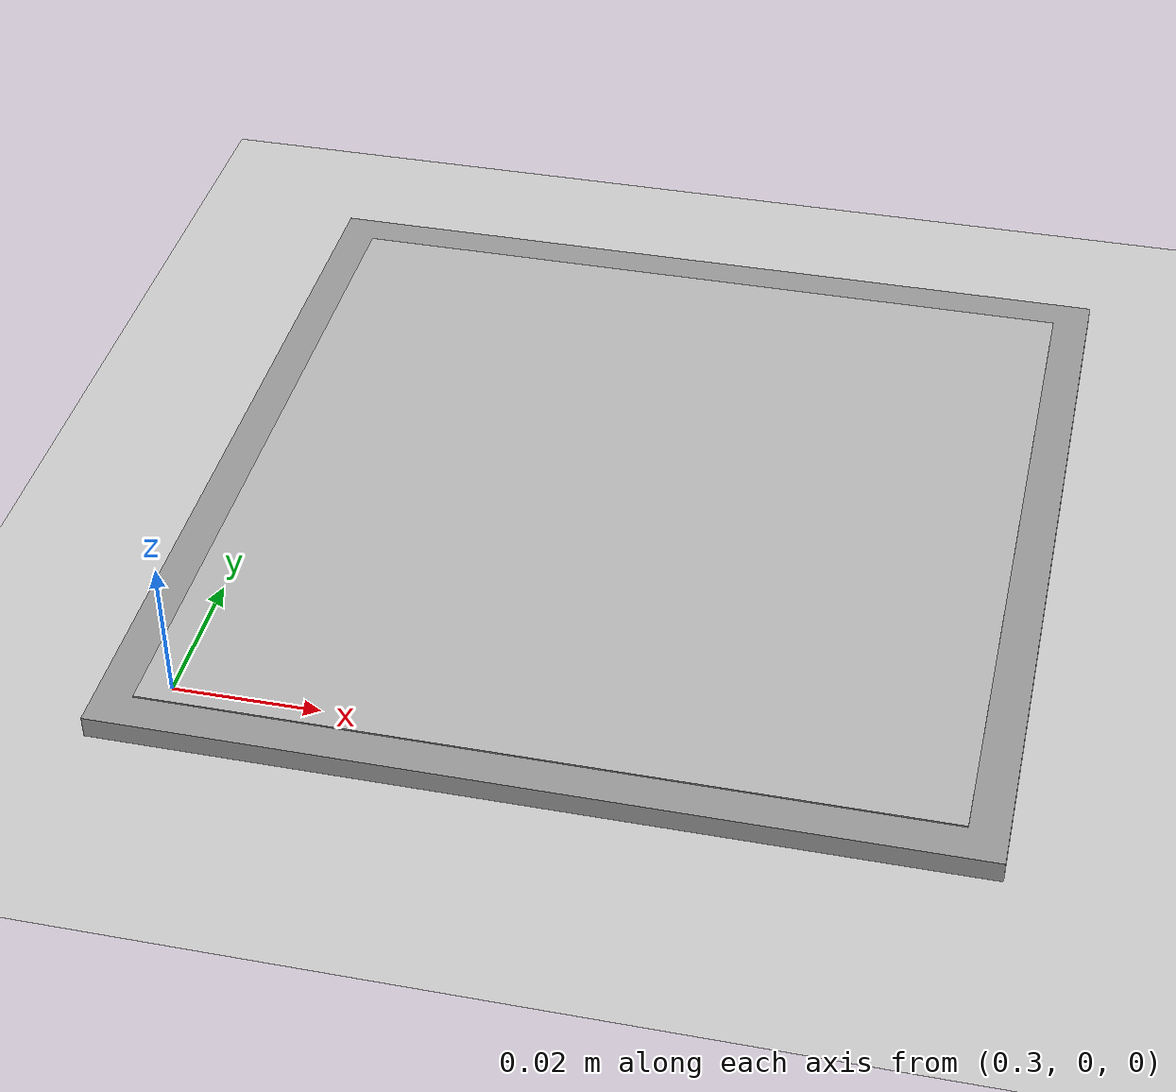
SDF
<?xml version="1.0" ?>
<sdf version="1.6">
  <world name="handeye_calibration">

    <physics type="ode">
      <max_step_size>0.001</max_step_size>
      <real_time_factor>1.0</real_time_factor>
      <real_time_update_rate>1000</real_time_update_rate>
    </physics>

    <scene>
      <ambient>0.7 0.7 0.7 1</ambient>
      <background>0.55 0.6 0.65 1</background>
      <shadows>false</shadows>
    </scene>

    <include><uri>model://ground_plane</uri></include>

    <!-- broad, soft illumination so the marker keeps its contrast -->
    <light type="directional" name="key_light">
      <pose>0 0 3 0 0 0</pose>
      <diffuse>0.8 0.8 0.8 1</diffuse>
      <specular>0.1 0.1 0.1 1</specular>
      <direction>-0.2 0.2 -1.0</direction>
      <cast_shadows>false</cast_shadows>
    </light>
    <light type="directional" name="fill_light">
      <pose>0 0 3 0 0 0</pose>
      <diffuse>0.5 0.5 0.5 1</diffuse>
      <specular>0.0 0.0 0.0 1</specular>
      <direction>0.5 -0.4 -1.0</direction>
      <cast_shadows>false</cast_shadows>
    </light>

    <include>
      <uri>model://aruco_marker</uri>
      <name>aruco_marker</name>
      <pose>0.351 0.044 0.003 0 0 0</pose>
    </include>

    <gui>
      <camera name="user_camera">
        <pose>1.4 -1.0 0.9 0 0.35 2.45</pose>
      </camera>
    </gui>

  </world>
</sdf>

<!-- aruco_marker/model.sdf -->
<sdf version="1.6">
  <model name="aruco_marker">
    <static>true</static>
    <link name="link">
      <visual name="marker_face">
        <!-- lift the face just above the backing so it never z-fights -->
        <pose>0 0 0.0031 0 0 0</pose>
        <geometry>
          <box><size>0.105 0.105 0.0002</size></box>
        </geometry>
        <material>
          <script>
            <uri>model://aruco_marker/materials/scripts</uri>
            <uri>model://aruco_marker/materials/textures</uri>
            <name>ArucoMarker/Face</name>
          </script>
        </material>
      </visual>

      <visual name="backing">
        <pose>0 0 0.0015 0 0 0</pose>
        <geometry>
          <box><size>0.115 0.115 0.003</size></box>
        </geometry>
        <material>
          <script>
            <uri>file://media/materials/scripts/gazebo.material</uri>
            <name>Gazebo/Grey</name>
          </script>
        </material>
      </visual>

      <collision name="collision">
        <pose>0 0 0.0015 0 0 0</pose>
        <geometry>
          <box><size>0.115 0.115 0.003</size></box>
        </geometry>
      </collision>
    </link>
  </model>
</sdf>
